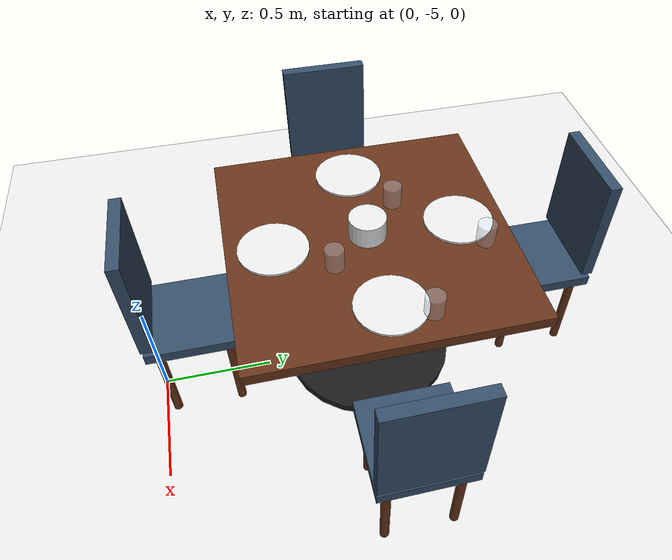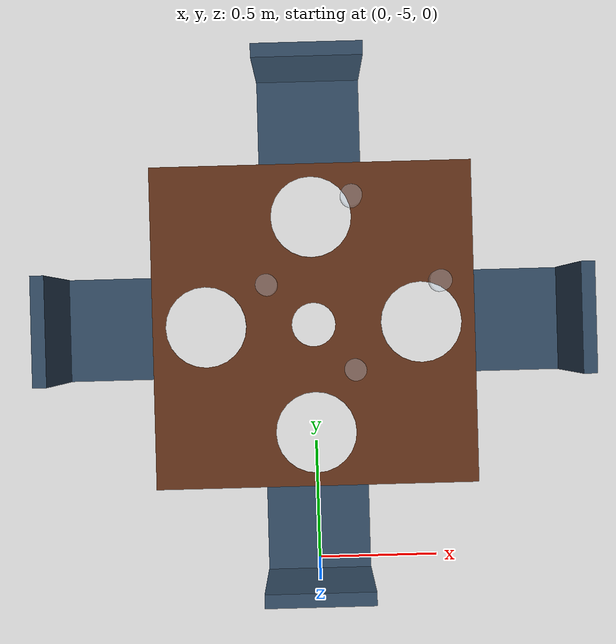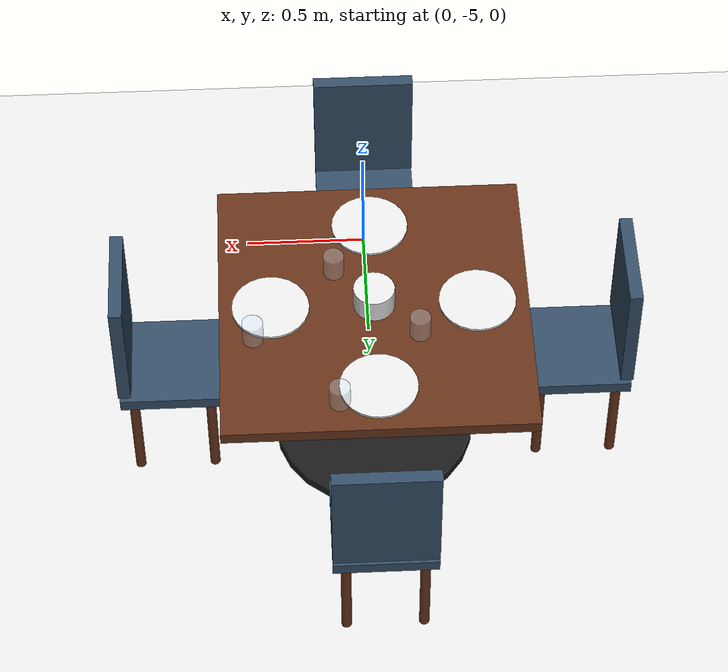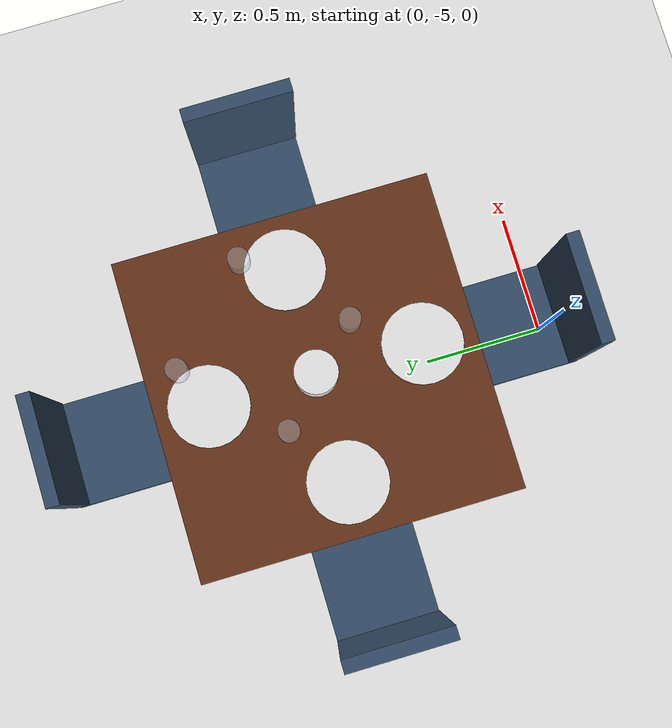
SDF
<sdf version="1.9">
 <world name="argo_restaurant">
  <model name="ground_plane">
   <static>true</static>
   <link name="link">
    <collision name="collision">
     <geometry><plane><normal>0 0 1</normal><size>100 100</size></plane></geometry>
    </collision>
    <visual name="visual">
     <geometry><plane><normal>0 0 1</normal><size>100 100</size></plane></geometry>
     <material>
      <ambient>0.9 0.9 0.9 1</ambient>
      <diffuse>0.9 0.9 0.9 1</diffuse>
      <specular>0.1 0.1 0.1 1</specular>
      <pbr><metal><roughness>0.1</roughness><metalness>0.0</metalness></metal></pbr>
     </material>
    </visual>
   </link>
  </model>
  <model name="table_1">
   <static>true</static>
   <link name="top_link">
    <pose>0.0 -4.0 0.75 0 0 0</pose>
    <collision name="top_collision"><geometry><box><size>1.2 1.2 0.05</size></box></geometry></collision>
    <visual name="top_visual">
     <geometry><box><size>1.2 1.2 0.05</size></box></geometry>
     <material>
      <ambient>0.4 0.2 0.1 1</ambient>
      <diffuse>0.4 0.2 0.1 1</diffuse>
      <specular>0.1 0.1 0.1 1</specular>
      <pbr><metal><roughness>0.7</roughness><metalness>0.1</metalness></metal></pbr>
     </material>
    </visual>
   </link>
   <link name="leg_link">
    <pose>0.0 -4.0 0.375 0 0 0</pose>
    <collision name="leg_collision">
     <geometry><cylinder><radius>0.1</radius><length>0.75</length></cylinder></geometry>
    </collision>
    <visual name="leg_visual">
     <geometry><cylinder><radius>0.1</radius><length>0.75</length></cylinder></geometry>
     <material>
      <ambient>0.1 0.1 0.1 1</ambient>
      <diffuse>0.1 0.1 0.1 1</diffuse>
      <specular>0.1 0.1 0.1 1</specular>
      <pbr><metal><roughness>0.5</roughness><metalness>0.0</metalness></metal></pbr>
     </material>
    </visual>
   </link>
   <link name="base_link">
    <pose>0.0 -4.0 0.025 0 0 0</pose>
    <collision name="base_collision">
     <geometry><cylinder><radius>0.4</radius><length>0.05</length></cylinder></geometry>
    </collision>
    <visual name="base_visual">
     <geometry><cylinder><radius>0.4</radius><length>0.05</length></cylinder></geometry>
     <material>
      <ambient>0.1 0.1 0.1 1</ambient>
      <diffuse>0.1 0.1 0.1 1</diffuse>
      <specular>0.1 0.1 0.1 1</specular>
      <pbr><metal><roughness>0.5</roughness><metalness>0.0</metalness></metal></pbr>
     </material>
    </visual>
   </link>
   <link name="chair_0_seat_link">
    <pose>0.0 -3.2 0.45 0 0 0</pose>
    <collision name="chair_0_seat_collision"><geometry><box><size>0.4 0.4 0.05</size></box></geometry></collision>
    <visual name="chair_0_seat_visual">
     <geometry><box><size>0.4 0.4 0.05</size></box></geometry>
     <material>
      <ambient>0.2 0.3 0.4 1</ambient>
      <diffuse>0.2 0.3 0.4 1</diffuse>
      <specular>0.1 0.1 0.1 1</specular>
      <pbr><metal><roughness>0.9</roughness><metalness>0.0</metalness></metal></pbr>
     </material>
    </visual>
   </link>
   <link name="chair_0_leg_-0.15_-0.15_link">
    <pose>-0.15 -3.35 0.225 0 0 0</pose>
    <collision name="chair_0_leg_-0.15_-0.15_collision">
     <geometry><cylinder><radius>0.02</radius><length>0.45</length></cylinder></geometry>
    </collision>
    <visual name="chair_0_leg_-0.15_-0.15_visual">
     <geometry><cylinder><radius>0.02</radius><length>0.45</length></cylinder></geometry>
     <material>
      <ambient>0.4 0.2 0.1 1</ambient>
      <diffuse>0.4 0.2 0.1 1</diffuse>
      <specular>0.1 0.1 0.1 1</specular>
      <pbr><metal><roughness>0.7</roughness><metalness>0.1</metalness></metal></pbr>
     </material>
    </visual>
   </link>
   <link name="chair_0_leg_0.15_-0.15_link">
    <pose>0.15 -3.35 0.225 0 0 0</pose>
    <collision name="chair_0_leg_0.15_-0.15_collision">
     <geometry><cylinder><radius>0.02</radius><length>0.45</length></cylinder></geometry>
    </collision>
    <visual name="chair_0_leg_0.15_-0.15_visual">
     <geometry><cylinder><radius>0.02</radius><length>0.45</length></cylinder></geometry>
     <material>
      <ambient>0.4 0.2 0.1 1</ambient>
      <diffuse>0.4 0.2 0.1 1</diffuse>
      <specular>0.1 0.1 0.1 1</specular>
      <pbr><metal><roughness>0.7</roughness><metalness>0.1</metalness></metal></pbr>
     </material>
    </visual>
   </link>
   <link name="chair_0_leg_-0.15_0.15_link">
    <pose>-0.15 -3.0500000000000003 0.225 0 0 0</pose>
    <collision name="chair_0_leg_-0.15_0.15_collision">
     <geometry><cylinder><radius>0.02</radius><length>0.45</length></cylinder></geometry>
    </collision>
    <visual name="chair_0_leg_-0.15_0.15_visual">
     <geometry><cylinder><radius>0.02</radius><length>0.45</length></cylinder></geometry>
     <material>
      <ambient>0.4 0.2 0.1 1</ambient>
      <diffuse>0.4 0.2 0.1 1</diffuse>
      <specular>0.1 0.1 0.1 1</specular>
      <pbr><metal><roughness>0.7</roughness><metalness>0.1</metalness></metal></pbr>
     </material>
    </visual>
   </link>
   <link name="chair_0_leg_0.15_0.15_link">
    <pose>0.15 -3.0500000000000003 0.225 0 0 0</pose>
    <collision name="chair_0_leg_0.15_0.15_collision">
     <geometry><cylinder><radius>0.02</radius><length>0.45</length></cylinder></geometry>
    </collision>
    <visual name="chair_0_leg_0.15_0.15_visual">
     <geometry><cylinder><radius>0.02</radius><length>0.45</length></cylinder></geometry>
     <material>
      <ambient>0.4 0.2 0.1 1</ambient>
      <diffuse>0.4 0.2 0.1 1</diffuse>
      <specular>0.1 0.1 0.1 1</specular>
      <pbr><metal><roughness>0.7</roughness><metalness>0.1</metalness></metal></pbr>
     </material>
    </visual>
   </link>
   <link name="chair_0_back_link">
    <pose>0.0 -3.02 0.75 0 0 0</pose>
    <collision name="chair_0_back_collision"><geometry><box><size>0.4 0.05 0.5</size></box></geometry></collision>
    <visual name="chair_0_back_visual">
     <geometry><box><size>0.4 0.05 0.5</size></box></geometry>
     <material>
      <ambient>0.2 0.3 0.4 1</ambient>
      <diffuse>0.2 0.3 0.4 1</diffuse>
      <specular>0.1 0.1 0.1 1</specular>
      <pbr><metal><roughness>0.9</roughness><metalness>0.0</metalness></metal></pbr>
     </material>
    </visual>
   </link>
   <link name="chair_1_seat_link">
    <pose>0.0 -4.8 0.45 0 0 3.1415</pose>
    <collision name="chair_1_seat_collision"><geometry><box><size>0.4 0.4 0.05</size></box></geometry></collision>
    <visual name="chair_1_seat_visual">
     <geometry><box><size>0.4 0.4 0.05</size></box></geometry>
     <material>
      <ambient>0.2 0.3 0.4 1</ambient>
      <diffuse>0.2 0.3 0.4 1</diffuse>
      <specular>0.1 0.1 0.1 1</specular>
      <pbr><metal><roughness>0.9</roughness><metalness>0.0</metalness></metal></pbr>
     </material>
    </visual>
   </link>
   <link name="chair_1_leg_-0.15_-0.15_link">
    <pose>-0.15 -4.95 0.225 0 0 0</pose>
    <collision name="chair_1_leg_-0.15_-0.15_collision">
     <geometry><cylinder><radius>0.02</radius><length>0.45</length></cylinder></geometry>
    </collision>
    <visual name="chair_1_leg_-0.15_-0.15_visual">
     <geometry><cylinder><radius>0.02</radius><length>0.45</length></cylinder></geometry>
     <material>
      <ambient>0.4 0.2 0.1 1</ambient>
      <diffuse>0.4 0.2 0.1 1</diffuse>
      <specular>0.1 0.1 0.1 1</specular>
      <pbr><metal><roughness>0.7</roughness><metalness>0.1</metalness></metal></pbr>
     </material>
    </visual>
   </link>
   <link name="chair_1_leg_0.15_-0.15_link">
    <pose>0.15 -4.95 0.225 0 0 0</pose>
    <collision name="chair_1_leg_0.15_-0.15_collision">
     <geometry><cylinder><radius>0.02</radius><length>0.45</length></cylinder></geometry>
    </collision>
    <visual name="chair_1_leg_0.15_-0.15_visual">
     <geometry><cylinder><radius>0.02</radius><length>0.45</length></cylinder></geometry>
     <material>
      <ambient>0.4 0.2 0.1 1</ambient>
      <diffuse>0.4 0.2 0.1 1</diffuse>
      <specular>0.1 0.1 0.1 1</specular>
      <pbr><metal><roughness>0.7</roughness><metalness>0.1</metalness></metal></pbr>
     </material>
    </visual>
   </link>
   <link name="chair_1_leg_-0.15_0.15_link">
    <pose>-0.15 -4.6499999999999995 0.225 0 0 0</pose>
    <collision name="chair_1_leg_-0.15_0.15_collision">
     <geometry><cylinder><radius>0.02</radius><length>0.45</length></cylinder></geometry>
    </collision>
    <visual name="chair_1_leg_-0.15_0.15_visual">
     <geometry><cylinder><radius>0.02</radius><length>0.45</length></cylinder></geometry>
     <material>
      <ambient>0.4 0.2 0.1 1</ambient>
      <diffuse>0.4 0.2 0.1 1</diffuse>
      <specular>0.1 0.1 0.1 1</specular>
      <pbr><metal><roughness>0.7</roughness><metalness>0.1</metalness></metal></pbr>
     </material>
    </visual>
   </link>
   <link name="chair_1_leg_0.15_0.15_link">
    <pose>0.15 -4.6499999999999995 0.225 0 0 0</pose>
    <collision name="chair_1_leg_0.15_0.15_collision">
     <geometry><cylinder><radius>0.02</radius><length>0.45</length></cylinder></geometry>
    </collision>
    <visual name="chair_1_leg_0.15_0.15_visual">
     <geometry><cylinder><radius>0.02</radius><length>0.45</length></cylinder></geometry>
     <material>
      <ambient>0.4 0.2 0.1 1</ambient>
      <diffuse>0.4 0.2 0.1 1</diffuse>
      <specular>0.1 0.1 0.1 1</specular>
      <pbr><metal><roughness>0.7</roughness><metalness>0.1</metalness></metal></pbr>
     </material>
    </visual>
   </link>
   <link name="chair_1_back_link">
    <pose>-1.6677646138888247e-05 -4.979999999227378 0.75 0 0 3.1415</pose>
    <collision name="chair_1_back_collision"><geometry><box><size>0.4 0.05 0.5</size></box></geometry></collision>
    <visual name="chair_1_back_visual">
     <geometry><box><size>0.4 0.05 0.5</size></box></geometry>
     <material>
      <ambient>0.2 0.3 0.4 1</ambient>
      <diffuse>0.2 0.3 0.4 1</diffuse>
      <specular>0.1 0.1 0.1 1</specular>
      <pbr><metal><roughness>0.9</roughness><metalness>0.0</metalness></metal></pbr>
     </material>
    </visual>
   </link>
   <link name="chair_2_seat_link">
    <pose>0.8 -4.0 0.45 0 0 -1.5707</pose>
    <collision name="chair_2_seat_collision"><geometry><box><size>0.4 0.4 0.05</size></box></geometry></collision>
    <visual name="chair_2_seat_visual">
     <geometry><box><size>0.4 0.4 0.05</size></box></geometry>
     <material>
      <ambient>0.2 0.3 0.4 1</ambient>
      <diffuse>0.2 0.3 0.4 1</diffuse>
      <specular>0.1 0.1 0.1 1</specular>
      <pbr><metal><roughness>0.9</roughness><metalness>0.0</metalness></metal></pbr>
     </material>
    </visual>
   </link>
   <link name="chair_2_leg_-0.15_-0.15_link">
    <pose>0.65 -4.15 0.225 0 0 0</pose>
    <collision name="chair_2_leg_-0.15_-0.15_collision">
     <geometry><cylinder><radius>0.02</radius><length>0.45</length></cylinder></geometry>
    </collision>
    <visual name="chair_2_leg_-0.15_-0.15_visual">
     <geometry><cylinder><radius>0.02</radius><length>0.45</length></cylinder></geometry>
     <material>
      <ambient>0.4 0.2 0.1 1</ambient>
      <diffuse>0.4 0.2 0.1 1</diffuse>
      <specular>0.1 0.1 0.1 1</specular>
      <pbr><metal><roughness>0.7</roughness><metalness>0.1</metalness></metal></pbr>
     </material>
    </visual>
   </link>
   <link name="chair_2_leg_0.15_-0.15_link">
    <pose>0.9500000000000001 -4.15 0.225 0 0 0</pose>
    <collision name="chair_2_leg_0.15_-0.15_collision">
     <geometry><cylinder><radius>0.02</radius><length>0.45</length></cylinder></geometry>
    </collision>
    <visual name="chair_2_leg_0.15_-0.15_visual">
     <geometry><cylinder><radius>0.02</radius><length>0.45</length></cylinder></geometry>
     <material>
      <ambient>0.4 0.2 0.1 1</ambient>
      <diffuse>0.4 0.2 0.1 1</diffuse>
      <specular>0.1 0.1 0.1 1</specular>
      <pbr><metal><roughness>0.7</roughness><metalness>0.1</metalness></metal></pbr>
     </material>
    </visual>
   </link>
   <link name="chair_2_leg_-0.15_0.15_link">
    <pose>0.65 -3.85 0.225 0 0 0</pose>
    <collision name="chair_2_leg_-0.15_0.15_collision">
     <geometry><cylinder><radius>0.02</radius><length>0.45</length></cylinder></geometry>
    </collision>
    <visual name="chair_2_leg_-0.15_0.15_visual">
     <geometry><cylinder><radius>0.02</radius><length>0.45</length></cylinder></geometry>
     <material>
      <ambient>0.4 0.2 0.1 1</ambient>
      <diffuse>0.4 0.2 0.1 1</diffuse>
      <specular>0.1 0.1 0.1 1</specular>
      <pbr><metal><roughness>0.7</roughness><metalness>0.1</metalness></metal></pbr>
     </material>
    </visual>
   </link>
   <link name="chair_2_leg_0.15_0.15_link">
    <pose>0.9500000000000001 -3.85 0.225 0 0 0</pose>
    <collision name="chair_2_leg_0.15_0.15_collision">
     <geometry><cylinder><radius>0.02</radius><length>0.45</length></cylinder></geometry>
    </collision>
    <visual name="chair_2_leg_0.15_0.15_visual">
     <geometry><cylinder><radius>0.02</radius><length>0.45</length></cylinder></geometry>
     <material>
      <ambient>0.4 0.2 0.1 1</ambient>
      <diffuse>0.4 0.2 0.1 1</diffuse>
      <specular>0.1 0.1 0.1 1</specular>
      <pbr><metal><roughness>0.7</roughness><metalness>0.1</metalness></metal></pbr>
     </material>
    </visual>
   </link>
   <link name="chair_2_back_link">
    <pose>0.9799999991649034 -3.9999826611769453 0.75 0 0 -1.5707</pose>
    <collision name="chair_2_back_collision"><geometry><box><size>0.4 0.05 0.5</size></box></geometry></collision>
    <visual name="chair_2_back_visual">
     <geometry><box><size>0.4 0.05 0.5</size></box></geometry>
     <material>
      <ambient>0.2 0.3 0.4 1</ambient>
      <diffuse>0.2 0.3 0.4 1</diffuse>
      <specular>0.1 0.1 0.1 1</specular>
      <pbr><metal><roughness>0.9</roughness><metalness>0.0</metalness></metal></pbr>
     </material>
    </visual>
   </link>
   <link name="chair_3_seat_link">
    <pose>-0.8 -4.0 0.45 0 0 1.5707</pose>
    <collision name="chair_3_seat_collision"><geometry><box><size>0.4 0.4 0.05</size></box></geometry></collision>
    <visual name="chair_3_seat_visual">
     <geometry><box><size>0.4 0.4 0.05</size></box></geometry>
     <material>
      <ambient>0.2 0.3 0.4 1</ambient>
      <diffuse>0.2 0.3 0.4 1</diffuse>
      <specular>0.1 0.1 0.1 1</specular>
      <pbr><metal><roughness>0.9</roughness><metalness>0.0</metalness></metal></pbr>
     </material>
    </visual>
   </link>
   <link name="chair_3_leg_-0.15_-0.15_link">
    <pose>-0.9500000000000001 -4.15 0.225 0 0 0</pose>
    <collision name="chair_3_leg_-0.15_-0.15_collision">
     <geometry><cylinder><radius>0.02</radius><length>0.45</length></cylinder></geometry>
    </collision>
    <visual name="chair_3_leg_-0.15_-0.15_visual">
     <geometry><cylinder><radius>0.02</radius><length>0.45</length></cylinder></geometry>
     <material>
      <ambient>0.4 0.2 0.1 1</ambient>
      <diffuse>0.4 0.2 0.1 1</diffuse>
      <specular>0.1 0.1 0.1 1</specular>
      <pbr><metal><roughness>0.7</roughness><metalness>0.1</metalness></metal></pbr>
     </material>
    </visual>
   </link>
   <link name="chair_3_leg_0.15_-0.15_link">
    <pose>-0.65 -4.15 0.225 0 0 0</pose>
    <collision name="chair_3_leg_0.15_-0.15_collision">
     <geometry><cylinder><radius>0.02</radius><length>0.45</length></cylinder></geometry>
    </collision>
    <visual name="chair_3_leg_0.15_-0.15_visual">
     <geometry><cylinder><radius>0.02</radius><length>0.45</length></cylinder></geometry>
     <material>
      <ambient>0.4 0.2 0.1 1</ambient>
      <diffuse>0.4 0.2 0.1 1</diffuse>
      <specular>0.1 0.1 0.1 1</specular>
      <pbr><metal><roughness>0.7</roughness><metalness>0.1</metalness></metal></pbr>
     </material>
    </visual>
   </link>
   <link name="chair_3_leg_-0.15_0.15_link">
    <pose>-0.9500000000000001 -3.85 0.225 0 0 0</pose>
    <collision name="chair_3_leg_-0.15_0.15_collision">
     <geometry><cylinder><radius>0.02</radius><length>0.45</length></cylinder></geometry>
    </collision>
    <visual name="chair_3_leg_-0.15_0.15_visual">
     <geometry><cylinder><radius>0.02</radius><length>0.45</length></cylinder></geometry>
     <material>
      <ambient>0.4 0.2 0.1 1</ambient>
      <diffuse>0.4 0.2 0.1 1</diffuse>
      <specular>0.1 0.1 0.1 1</specular>
      <pbr><metal><roughness>0.7</roughness><metalness>0.1</metalness></metal></pbr>
     </material>
    </visual>
   </link>
   <link name="chair_3_leg_0.15_0.15_link">
    <pose>-0.65 -3.85 0.225 0 0 0</pose>
    <collision name="chair_3_leg_0.15_0.15_collision">
     <geometry><cylinder><radius>0.02</radius><length>0.45</length></cylinder></geometry>
    </collision>
    <visual name="chair_3_leg_0.15_0.15_visual">
     <geometry><cylinder><radius>0.02</radius><length>0.45</length></cylinder></geometry>
     <material>
      <ambient>0.4 0.2 0.1 1</ambient>
      <diffuse>0.4 0.2 0.1 1</diffuse>
      <specular>0.1 0.1 0.1 1</specular>
      <pbr><metal><roughness>0.7</roughness><metalness>0.1</metalness></metal></pbr>
     </material>
    </visual>
   </link>
   <link name="chair_3_back_link">
    <pose>-0.9799999991649034 -3.9999826611769453 0.75 0 0 1.5707</pose>
    <collision name="chair_3_back_collision"><geometry><box><size>0.4 0.05 0.5</size></box></geometry></collision>
    <visual name="chair_3_back_visual">
     <geometry><box><size>0.4 0.05 0.5</size></box></geometry>
     <material>
      <ambient>0.2 0.3 0.4 1</ambient>
      <diffuse>0.2 0.3 0.4 1</diffuse>
      <specular>0.1 0.1 0.1 1</specular>
      <pbr><metal><roughness>0.9</roughness><metalness>0.0</metalness></metal></pbr>
     </material>
    </visual>
   </link>
   <link name="centerpiece_pot_link">
    <pose>0.0 -4.0 0.825 0 0 0</pose>
    <collision name="centerpiece_pot_collision">
     <geometry><cylinder><radius>0.08</radius><length>0.1</length></cylinder></geometry>
    </collision>
    <visual name="centerpiece_pot_visual">
     <geometry><cylinder><radius>0.08</radius><length>0.1</length></cylinder></geometry>
     <material>
      <ambient>0.9 0.9 0.9 1</ambient>
      <diffuse>0.9 0.9 0.9 1</diffuse>
      <specular>0.1 0.1 0.1 1</specular>
      <pbr><metal><roughness>0.2</roughness><metalness>0.0</metalness></metal></pbr>
     </material>
    </visual>
   </link>
   <link name="plate_0_link">
    <pose>0.0 -3.6 0.78 0 0 0</pose>
    <collision name="plate_0_collision">
     <geometry><cylinder><radius>0.15</radius><length>0.01</length></cylinder></geometry>
    </collision>
    <visual name="plate_0_visual">
     <geometry><cylinder><radius>0.15</radius><length>0.01</length></cylinder></geometry>
     <material>
      <ambient>0.9 0.9 0.9 1</ambient>
      <diffuse>0.9 0.9 0.9 1</diffuse>
      <specular>0.1 0.1 0.1 1</specular>
      <pbr><metal><roughness>0.2</roughness><metalness>0.0</metalness></metal></pbr>
     </material>
    </visual>
   </link>
   <link name="glass_0_link">
    <pose>0.15 -3.53 0.825 0 0 0</pose>
    <collision name="glass_0_collision">
     <geometry><cylinder><radius>0.04</radius><length>0.1</length></cylinder></geometry>
    </collision>
    <visual name="glass_0_visual">
     <geometry><cylinder><radius>0.04</radius><length>0.1</length></cylinder></geometry>
     <material>
      <ambient>0.8 0.9 1.0 0.3</ambient>
      <diffuse>0.8 0.9 1.0 0.3</diffuse>
      <specular>0.9 0.9 0.9 1</specular>
      <pbr><metal><roughness>0.0</roughness><metalness>0.9</metalness></metal></pbr>
     </material>
    </visual>
   </link>
   <link name="plate_1_link">
    <pose>0.0 -4.4 0.78 0 0 0</pose>
    <collision name="plate_1_collision">
     <geometry><cylinder><radius>0.15</radius><length>0.01</length></cylinder></geometry>
    </collision>
    <visual name="plate_1_visual">
     <geometry><cylinder><radius>0.15</radius><length>0.01</length></cylinder></geometry>
     <material>
      <ambient>0.9 0.9 0.9 1</ambient>
      <diffuse>0.9 0.9 0.9 1</diffuse>
      <specular>0.1 0.1 0.1 1</specular>
      <pbr><metal><roughness>0.2</roughness><metalness>0.0</metalness></metal></pbr>
     </material>
    </visual>
   </link>
   <link name="glass_1_link">
    <pose>0.15 -4.17 0.825 0 0 0</pose>
    <collision name="glass_1_collision">
     <geometry><cylinder><radius>0.04</radius><length>0.1</length></cylinder></geometry>
    </collision>
    <visual name="glass_1_visual">
     <geometry><cylinder><radius>0.04</radius><length>0.1</length></cylinder></geometry>
     <material>
      <ambient>0.8 0.9 1.0 0.3</ambient>
      <diffuse>0.8 0.9 1.0 0.3</diffuse>
      <specular>0.9 0.9 0.9 1</specular>
      <pbr><metal><roughness>0.0</roughness><metalness>0.9</metalness></metal></pbr>
     </material>
    </visual>
   </link>
   <link name="plate_2_link">
    <pose>0.4 -4.0 0.78 0 0 0</pose>
    <collision name="plate_2_collision">
     <geometry><cylinder><radius>0.15</radius><length>0.01</length></cylinder></geometry>
    </collision>
    <visual name="plate_2_visual">
     <geometry><cylinder><radius>0.15</radius><length>0.01</length></cylinder></geometry>
     <material>
      <ambient>0.9 0.9 0.9 1</ambient>
      <diffuse>0.9 0.9 0.9 1</diffuse>
      <specular>0.1 0.1 0.1 1</specular>
      <pbr><metal><roughness>0.2</roughness><metalness>0.0</metalness></metal></pbr>
     </material>
    </visual>
   </link>
   <link name="glass_2_link">
    <pose>0.4700000000000001 -3.85 0.825 0 0 0</pose>
    <collision name="glass_2_collision">
     <geometry><cylinder><radius>0.04</radius><length>0.1</length></cylinder></geometry>
    </collision>
    <visual name="glass_2_visual">
     <geometry><cylinder><radius>0.04</radius><length>0.1</length></cylinder></geometry>
     <material>
      <ambient>0.8 0.9 1.0 0.3</ambient>
      <diffuse>0.8 0.9 1.0 0.3</diffuse>
      <specular>0.9 0.9 0.9 1</specular>
      <pbr><metal><roughness>0.0</roughness><metalness>0.9</metalness></metal></pbr>
     </material>
    </visual>
   </link>
   <link name="plate_3_link">
    <pose>-0.4 -4.0 0.78 0 0 0</pose>
    <collision name="plate_3_collision">
     <geometry><cylinder><radius>0.15</radius><length>0.01</length></cylinder></geometry>
    </collision>
    <visual name="plate_3_visual">
     <geometry><cylinder><radius>0.15</radius><length>0.01</length></cylinder></geometry>
     <material>
      <ambient>0.9 0.9 0.9 1</ambient>
      <diffuse>0.9 0.9 0.9 1</diffuse>
      <specular>0.1 0.1 0.1 1</specular>
      <pbr><metal><roughness>0.2</roughness><metalness>0.0</metalness></metal></pbr>
     </material>
    </visual>
   </link>
   <link name="glass_3_link">
    <pose>-0.17000000000000007 -3.85 0.825 0 0 0</pose>
    <collision name="glass_3_collision">
     <geometry><cylinder><radius>0.04</radius><length>0.1</length></cylinder></geometry>
    </collision>
    <visual name="glass_3_visual">
     <geometry><cylinder><radius>0.04</radius><length>0.1</length></cylinder></geometry>
     <material>
      <ambient>0.8 0.9 1.0 0.3</ambient>
      <diffuse>0.8 0.9 1.0 0.3</diffuse>
      <specular>0.9 0.9 0.9 1</specular>
      <pbr><metal><roughness>0.0</roughness><metalness>0.9</metalness></metal></pbr>
     </material>
    </visual>
   </link>
  </model>
 </world>
</sdf>
